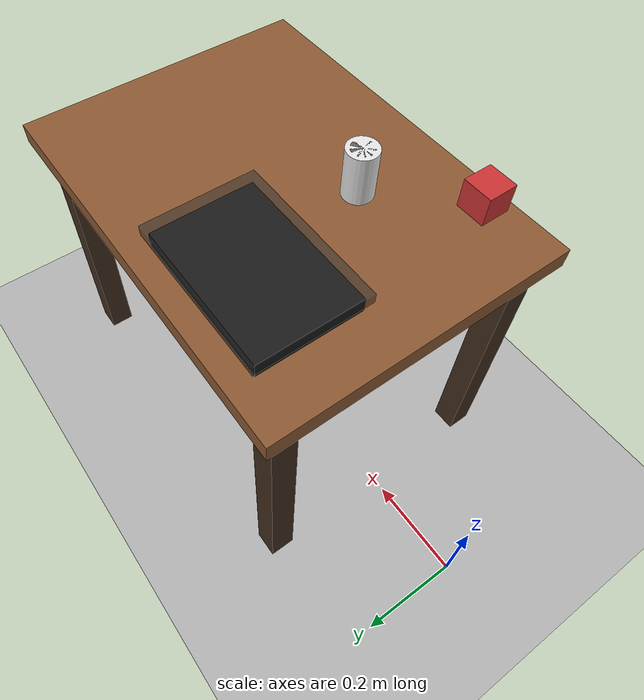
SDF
<?xml version="1.0" ?>
<sdf version="1.9">
  <world name="default">

    <!-- Core Gazebo Sim systems  -->
    <plugin filename="gz-sim-physics-system" name="gz::sim::systems::Physics">
      <engine>
      <filename>gz-physics-bullet-featherstone-plugin</filename>
      </engine>
    </plugin>
    <plugin filename="gz-sim-user-commands-system" name="gz::sim::systems::UserCommands"/>
    <plugin filename="gz-sim-scene-broadcaster-system" name="gz::sim::systems::SceneBroadcaster"/>

    <!--  for camera / depth / lidar -->
    <plugin filename="gz-sim-sensors-system" name="gz::sim::systems::Sensors">
      <render_engine>ogre2</render_engine>
    </plugin>

    <!-- Physics engine -->
    <physics name="default_physics" type="dart">
      <max_step_size>0.001</max_step_size>
      <real_time_factor>1.0</real_time_factor>
      <real_time_update_rate>1000</real_time_update_rate>
    </physics>

    <!-- Simple light -->
    <light name="sun" type="directional">
      <cast_shadows>true</cast_shadows>
      <pose>0 0 10 0 0 0</pose>
      <diffuse>1 1 1 1</diffuse>
      <specular>0.2 0.2 0.2 1</specular>
      <direction>-0.5 0.5 -1</direction>
    </light>

    <!-- Ground plane -->
    <model name="ground_plane">
      <static>true</static>
      <link name="link">
        <collision name="collision">
          <geometry>
            <plane>
              <normal>0 0 1</normal>
              <size>50 50</size>
            </plane>
          </geometry>
        </collision>
        <visual name="visual">
          <geometry>
            <plane>
              <normal>0 0 1</normal>
              <size>50 50</size>
            </plane>
          </geometry>
          <material>
            <ambient>0.7 0.7 0.7 1</ambient>
            <diffuse>0.7 0.7 0.7 1</diffuse>
          </material>
        </visual>
      </link>
    </model>

    <include>
      <uri>file:///home/rhenius/workspace/my_robot_task_api/worlds/table.sdf</uri>
      <pose>0.6 0.0 0.0 0 0 0</pose>
    </include>

    <include>
      <uri>file:///home/rhenius/workspace/my_robot_task_api/worlds/box.sdf</uri>
      <pose>0.35 -0.25 0.63 0 0 0</pose>
    </include>

    <include>
      <uri>file:///home/rhenius/workspace/my_robot_task_api/worlds/cup.sdf</uri>
      <pose>0.5 -0.1 0.65 0 0 0</pose>
    </include>

    <include>
      <uri>file:///home/rhenius/workspace/my_robot_task_api/worlds/tray.sdf</uri>
      <pose>0.45 0.15 0.615 0 0 0</pose>
    </include>

  </world>
</sdf>

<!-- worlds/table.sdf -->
<sdf version="1.9">
  <model name="table">
    <static>true</static>
    <pose>0 0 0 0 0 0</pose>

    <!-- Label: table = 3 -->
    <plugin filename="gz-sim-label-system" name="gz::sim::systems::Label">
      <label>3</label>
    </plugin>

    <link name="link">

      <!-- Tabletop -->
      <!-- center at 0.58 so surface = 0.60 -->
      <collision name="top_collision">
        <pose>0 0 0.58 0 0 0</pose>
        <geometry>
          <box><size>0.8 0.6 0.04</size></box>
        </geometry>
      </collision>

      <visual name="top_visual">
        <pose>0 0 0.58 0 0 0</pose>
        <geometry>
          <box><size>0.8 0.6 0.04</size></box>
        </geometry>
        <material>
          <diffuse>0.55 0.35 0.2 1</diffuse>
        </material>
      </visual>

      <!-- Legs -->
      <!-- height = 0.56 -->
      <!-- center = 0.28 -->

      <collision name="leg1_col">
        <pose>0.35 0.25 0.28 0 0 0</pose>
        <geometry><box><size>0.05 0.05 0.56</size></box></geometry>
      </collision>
      <visual name="leg1_vis">
        <pose>0.35 0.25 0.28 0 0 0</pose>
        <geometry><box><size>0.05 0.05 0.56</size></box></geometry>
        <material><diffuse>0.25 0.18 0.12 1</diffuse></material>
      </visual>

      <collision name="leg2_col">
        <pose>0.35 -0.25 0.28 0 0 0</pose>
        <geometry><box><size>0.05 0.05 0.56</size></box></geometry>
      </collision>
      <visual name="leg2_vis">
        <pose>0.35 -0.25 0.28 0 0 0</pose>
        <geometry><box><size>0.05 0.05 0.56</size></box></geometry>
        <material><diffuse>0.25 0.18 0.12 1</diffuse></material>
      </visual>

      <collision name="leg3_col">
        <pose>-0.35 0.25 0.28 0 0 0</pose>
        <geometry><box><size>0.05 0.05 0.56</size></box></geometry>
      </collision>
      <visual name="leg3_vis">
        <pose>-0.35 0.25 0.28 0 0 0</pose>
        <geometry><box><size>0.05 0.05 0.56</size></box></geometry>
        <material><diffuse>0.25 0.18 0.12 1</diffuse></material>
      </visual>

      <collision name="leg4_col">
        <pose>-0.35 -0.25 0.28 0 0 0</pose>
        <geometry><box><size>0.05 0.05 0.56</size></box></geometry>
      </collision>
      <visual name="leg4_vis">
        <pose>-0.35 -0.25 0.28 0 0 0</pose>
        <geometry><box><size>0.05 0.05 0.56</size></box></geometry>
        <material><diffuse>0.25 0.18 0.12 1</diffuse></material>
      </visual>

    </link>
  </model>
</sdf>

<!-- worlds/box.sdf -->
<sdf version="1.9">
  <model name="box">
    <static>false</static>
    <pose>0 0 0 0 0 0</pose>

    <!-- Label: box = 2 -->
    <plugin filename="gz-sim-label-system" name="gz::sim::systems::Label">
      <label>2</label>
    </plugin>

    <link name="link">
      <inertial><mass>0.3</mass></inertial>

      <collision name="collision">
        <geometry><box><size>0.06 0.06 0.06</size></box></geometry>
      </collision>

      <visual name="visual">
        <geometry><box><size>0.06 0.06 0.06</size></box></geometry>
        <material><diffuse>0.8 0.2 0.2 1</diffuse></material>
      </visual>
    </link>
  </model>
</sdf>

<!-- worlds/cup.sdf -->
<sdf version="1.9">
  <model name="cup">
    <static>false</static>
    <pose>0 0 0 0 0 0</pose>

    <!-- Label: cup = 1 -->
    <plugin filename="gz-sim-label-system" name="gz::sim::systems::Label">
      <label>1</label>
    </plugin>

    <link name="link">
      <inertial>
        <mass>0.2</mass>
        <inertia>
          <ixx>0.0002</ixx><iyy>0.0002</iyy><izz>0.0002</izz>
          <ixy>0</ixy><ixz>0</ixz><iyz>0</iyz>
        </inertia>
      </inertial>

      <!-- Simple collision -->
      <collision name="collision">
        <geometry>
          <cylinder>
            <radius>0.04</radius>
            <length>0.10</length>
          </cylinder>
        </geometry>
      </collision>

      <!-- Outer wall visual -->
      <visual name="outer">
        <geometry>
          <cylinder>
            <radius>0.03</radius>
            <length>0.10</length>
          </cylinder>
        </geometry>
        <material>
          <diffuse>0.9 0.9 0.9 1</diffuse>
        </material>
      </visual>

      <!-- Inner cavity visual -->
      <visual name="inner_cavity">
        <pose>0 0 0.01 0 0 0</pose>
        <geometry>
          <cylinder>
            <radius>0.022</radius>
            <length>0.08</length>
          </cylinder>
        </geometry>
        <material>
          <diffuse>0.2 0.2 0.2 1</diffuse>
        </material>
        <transparency>0.3</transparency>
      </visual>
    </link>
  </model>
</sdf>

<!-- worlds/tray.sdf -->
<sdf version="1.9">
  <model name="tray">
    <static>false</static>
    <pose>0 0 0 0 0 0</pose>

    <!-- Label: tray = 4 -->
    <plugin filename="gz-sim-label-system" name="gz::sim::systems::Label">
      <label>4</label>
    </plugin>

    <link name="link">
      <inertial>
        <mass>0.5</mass>
      </inertial>

      <collision name="collision">
        <geometry>
          <box><size>0.30 0.20 0.03</size></box>
        </geometry>
      </collision>

      <visual name="base">
        <geometry>
          <box><size>0.30 0.20 0.03</size></box>
        </geometry>
        <material><diffuse>0.1 0.1 0.1 1</diffuse></material>
      </visual>

      <!-- Rim visual (purely visual) -->
      <visual name="rim">
        <pose>0 0 0.02 0 0 0</pose>
        <geometry>
          <box><size>0.32 0.22 0.02</size></box>
        </geometry>
        <material><diffuse>0.15 0.15 0.15 1</diffuse></material>
        <transparency>0.5</transparency>
      </visual>
    </link>
  </model>
</sdf>
